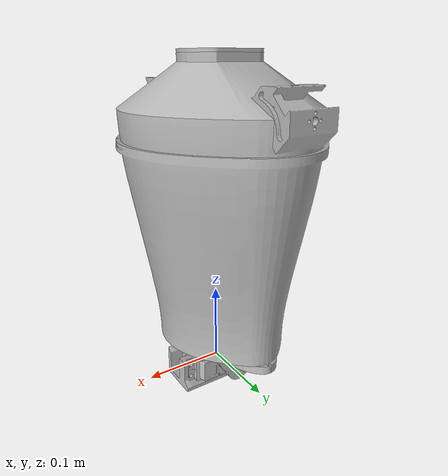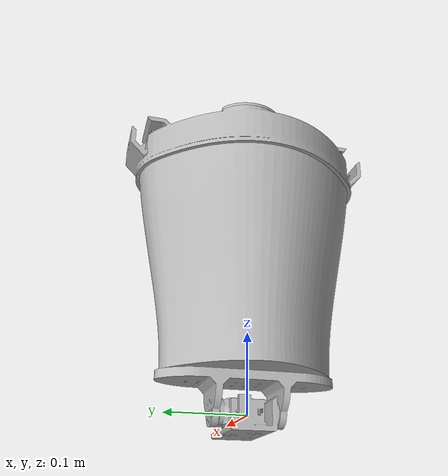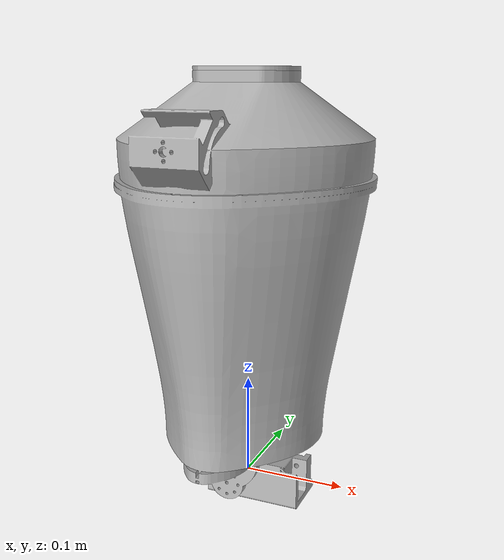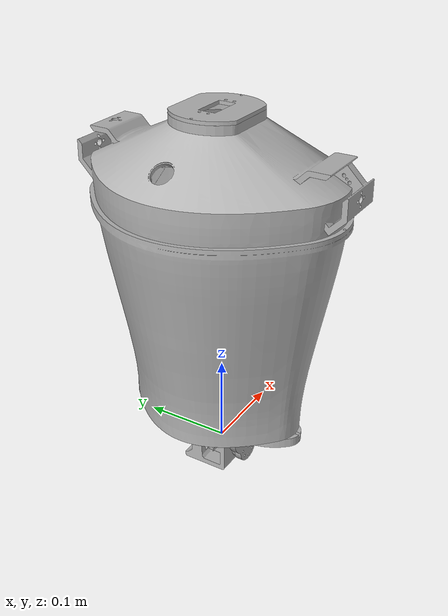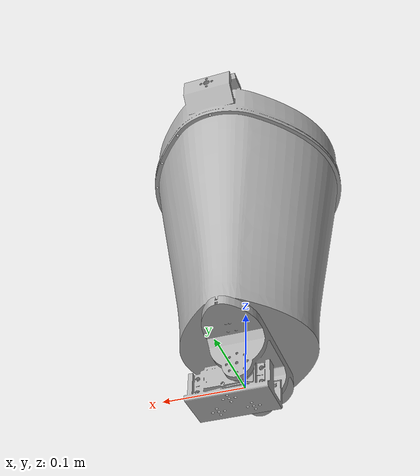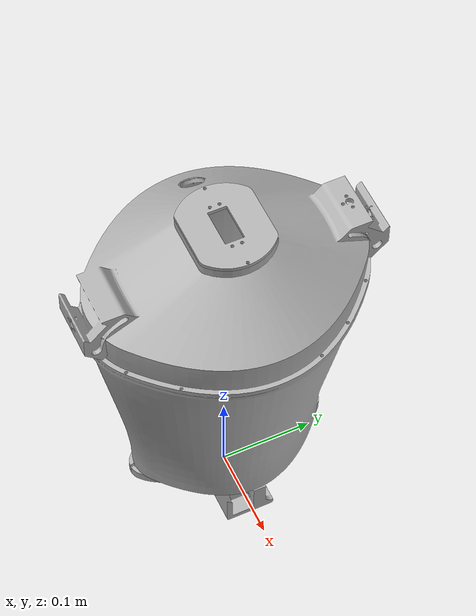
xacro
<?xml version="1.0" ?>
<robot name="torso" xmlns:xacro="http://www.ros.org/wiki/xacro">

<xacro:include filename="$(find torso_description)/urdf/materials.xacro" />
<xacro:include filename="$(find torso_description)/urdf/torso.trans" />
<xacro:include filename="$(find torso_description)/urdf/torso.gazebo" />
<link name="base_link">
  <inertial>
    <origin xyz="0.01226388148365098 0.003301322690118828 -0.002221433187855119" rpy="0 0 0"/>
    <mass value="1.1891882774494758"/>
    <inertia ixx="0.000477" iyy="0.00084" izz="0.001032" ixy="5e-06" iyz="-1.1e-05" ixz="6e-06"/>
  </inertial>
  <visual>
    <origin xyz="0 0 0" rpy="0 0 0"/>
    <geometry>
      <mesh filename="package://torso_description/meshes/base_link.stl" scale="0.001 0.001 0.001"/>
    </geometry>
    <material name="silver"/>
  </visual>
  <collision>
    <origin xyz="0 0 0" rpy="0 0 0"/>
    <geometry>
      <mesh filename="package://torso_description/meshes/base_link.stl" scale="0.001 0.001 0.001"/>
    </geometry>
  </collision>
</link>

<link name="80kg_connector_1">
  <inertial>
    <origin xyz="-0.00020098510982567448 -0.036001236457894936 0.030829496225321933" rpy="0 0 0"/>
    <mass value="1.1217939086830222"/>
    <inertia ixx="0.003468" iyy="0.000589" izz="0.003688" ixy="0.0" iyz="-0.0" ixz="0.0"/>
  </inertial>
  <visual>
    <origin xyz="0.00612 -0.039553 -0.002351" rpy="0 0 0"/>
    <geometry>
      <mesh filename="package://torso_description/meshes/80kg_connector_1.stl" scale="0.001 0.001 0.001"/>
    </geometry>
    <material name="silver"/>
  </visual>
  <collision>
    <origin xyz="0.00612 -0.039553 -0.002351" rpy="0 0 0"/>
    <geometry>
      <mesh filename="package://torso_description/meshes/80kg_connector_1.stl" scale="0.001 0.001 0.001"/>
    </geometry>
  </collision>
</link>

<link name="torso_1">
  <inertial>
    <origin xyz="-0.010012540711269748 -0.0005924359884935475 0.19030717289369228" rpy="0 0 0"/>
    <mass value="1.6115340181448752"/>
    <inertia ixx="0.030434" iyy="0.025694" izz="0.017855" ixy="-4e-06" iyz="9.9e-05" ixz="-4.5e-05"/>
  </inertial>
  <visual>
    <origin xyz="-0.004219 -0.003553 -0.040482" rpy="0 0 0"/>
    <geometry>
      <mesh filename="package://torso_description/meshes/torso_1.stl" scale="0.001 0.001 0.001"/>
    </geometry>
    <material name="silver"/>
  </visual>
  <collision>
    <origin xyz="-0.004219 -0.003553 -0.040482" rpy="0 0 0"/>
    <geometry>
      <mesh filename="package://torso_description/meshes/torso_1.stl" scale="0.001 0.001 0.001"/>
    </geometry>
  </collision>
</link>

<link name="neck_lid_1">
  <inertial>
    <origin xyz="0.047394792914612335 6.094687622602846e-07 0.002140581453534962" rpy="0 0 0"/>
    <mass value="0.026014955223096565"/>
    <inertia ixx="1.4e-05" iyy="1.9e-05" izz="3.3e-05" ixy="-0.0" iyz="-0.0" ixz="-0.0"/>
  </inertial>
  <visual>
    <origin xyz="0.053938 -0.003962 -0.400311" rpy="0 0 0"/>
    <geometry>
      <mesh filename="package://torso_description/meshes/neck_lid_1.stl" scale="0.001 0.001 0.001"/>
    </geometry>
    <material name="silver"/>
  </visual>
  <collision>
    <origin xyz="0.053938 -0.003962 -0.400311" rpy="0 0 0"/>
    <geometry>
      <mesh filename="package://torso_description/meshes/neck_lid_1.stl" scale="0.001 0.001 0.001"/>
    </geometry>
  </collision>
</link>

<joint name="Revolute 1" type="continuous">
  <origin xyz="-0.00612 0.039553 0.002351" rpy="0 0 0"/>
  <parent link="base_link"/>
  <child link="80kg_connector_1"/>
  <axis xyz="-0.0 -1.0 0.0"/>
</joint>

<joint name="Rigid 2" type="fixed">
  <origin xyz="0.010339 -0.036 0.038131" rpy="0 0 0"/>
  <parent link="80kg_connector_1"/>
  <child link="torso_1"/>
</joint>

<joint name="Rigid 3" type="fixed">
  <origin xyz="-0.058157 0.000409 0.359829" rpy="0 0 0"/>
  <parent link="torso_1"/>
  <child link="neck_lid_1"/>
</joint>

</robot>

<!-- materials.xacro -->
<robot name="torso" xmlns:xacro="http://www.ros.org/wiki/xacro" >

<material name="silver">
  <color rgba="0.700 0.700 0.700 1.000"/>
</material>

</robot>

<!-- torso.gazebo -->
<robot name="torso" xmlns:xacro="http://www.ros.org/wiki/xacro" >

<xacro:property name="body_color" value="Gazebo/Silver" />

<gazebo>
  <plugin name="control" filename="libgazebo_ros_control.so"/>
</gazebo>
<gazebo reference="base_link">
  <material>${body_color}</material>
  <mu1>0.2</mu1>
  <mu2>0.2</mu2>
  <selfCollide>true</selfCollide>
  <gravity>true</gravity>
</gazebo>

<gazebo reference="80kg_connector_1">
  <material>${body_color}</material>
  <mu1>0.2</mu1>
  <mu2>0.2</mu2>
  <selfCollide>true</selfCollide>
</gazebo>

<gazebo reference="torso_1">
  <material>${body_color}</material>
  <mu1>0.2</mu1>
  <mu2>0.2</mu2>
  <selfCollide>true</selfCollide>
</gazebo>

<gazebo reference="neck_lid_1">
  <material>${body_color}</material>
  <mu1>0.2</mu1>
  <mu2>0.2</mu2>
  <selfCollide>true</selfCollide>
</gazebo>

</robot>
